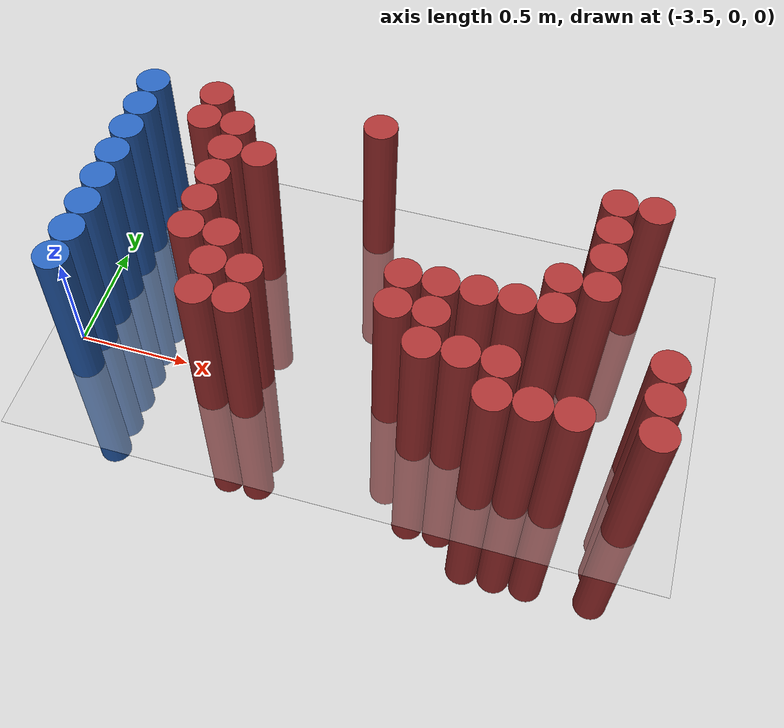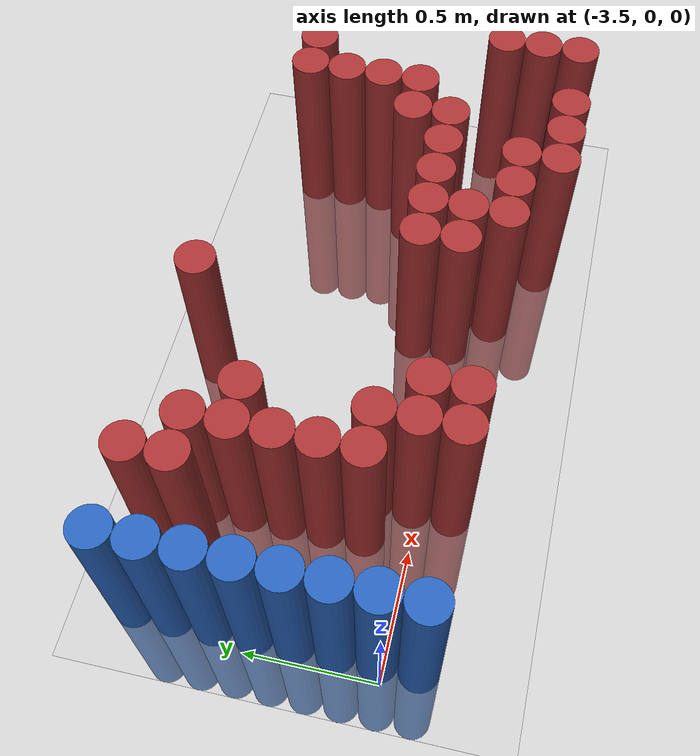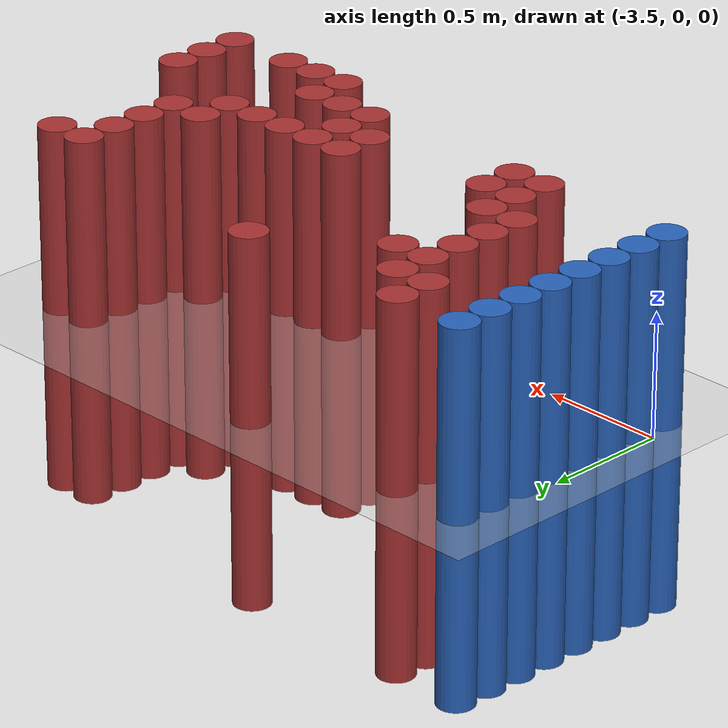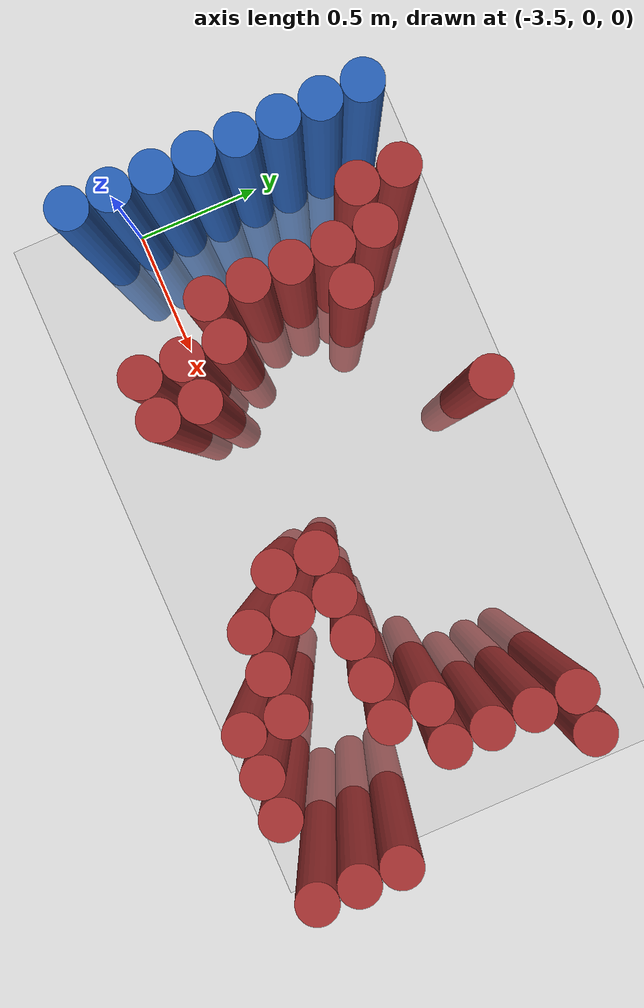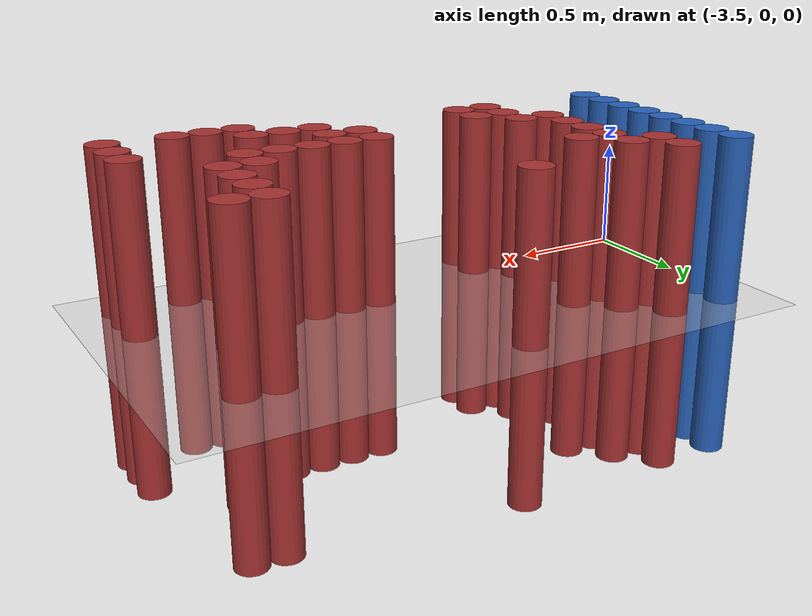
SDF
<sdf version="1.6">
 <world name="default">
  <model name="ground_plane">
   <static>1</static>
   <link name="link">
    <collision name="collision">
     <geometry><plane><normal>0 0 1</normal><size>100 100</size></plane></geometry>
     <surface><friction><ode><mu>100</mu><mu2>50</mu2></ode></friction></surface>
    </collision>
    <visual name="visual">
     <cast_shadows>0</cast_shadows>
     <geometry><plane><normal>0 0 1</normal><size>100 100</size></plane></geometry>
     <material>
      <script><uri>file://media/materials/scripts/gazebo.material</uri><name>Gazebo/Grey</name></script>
     </material>
    </visual>
   </link>
  </model>
  <model name="unit_cylinder_113">
   <static>1</static>
   <pose>-3.425000 -0.125000 0.000000 0.000000 0.000000 0.000000</pose>
   <link name="link">
    <inertial>
     <mass>1</mass>
     <inertia><ixx>0.145833</ixx><ixy>0</ixy><ixz>0</ixz><iyy>0.145833</iyy><iyz>0</iyz><izz>0.125</izz></inertia>
    </inertial>
    <collision name="collision">
     <geometry><cylinder><radius>0.075000</radius><length>1.5</length></cylinder></geometry>
    </collision>
    <visual name="visual">
     <geometry><cylinder><radius>0.075000</radius><length>1.5</length></cylinder></geometry>
     <material>
      <ambient>0.152000 0.379000 0.720000 1</ambient>
      <diffuse>0.152000 0.379000 0.720000 1</diffuse>
     </material>
     <material>
      <script><name>Gazebo/Grey</name><uri>file://media/materials/scripts/gazebo.material</uri></script>
     </material>
    </visual>
   </link>
  </model>
  <model name="unit_cylinder_115">
   <static>1</static>
   <pose>-3.425000 0.025000 0.000000 0.000000 0.000000 0.000000</pose>
   <link name="link">
    <inertial>
     <mass>1</mass>
     <inertia><ixx>0.145833</ixx><ixy>0</ixy><ixz>0</ixz><iyy>0.145833</iyy><iyz>0</iyz><izz>0.125</izz></inertia>
    </inertial>
    <collision name="collision">
     <geometry><cylinder><radius>0.075000</radius><length>1.5</length></cylinder></geometry>
    </collision>
    <visual name="visual">
     <geometry><cylinder><radius>0.075000</radius><length>1.5</length></cylinder></geometry>
     <material>
      <ambient>0.152000 0.379000 0.720000 1</ambient>
      <diffuse>0.152000 0.379000 0.720000 1</diffuse>
     </material>
     <material>
      <script><name>Gazebo/Grey</name><uri>file://media/materials/scripts/gazebo.material</uri></script>
     </material>
    </visual>
   </link>
  </model>
  <model name="unit_cylinder_117">
   <static>1</static>
   <pose>-3.425000 0.175000 0.000000 0.000000 0.000000 0.000000</pose>
   <link name="link">
    <inertial>
     <mass>1</mass>
     <inertia><ixx>0.145833</ixx><ixy>0</ixy><ixz>0</ixz><iyy>0.145833</iyy><iyz>0</iyz><izz>0.125</izz></inertia>
    </inertial>
    <collision name="collision">
     <geometry><cylinder><radius>0.075000</radius><length>1.5</length></cylinder></geometry>
    </collision>
    <visual name="visual">
     <geometry><cylinder><radius>0.075000</radius><length>1.5</length></cylinder></geometry>
     <material>
      <ambient>0.152000 0.379000 0.720000 1</ambient>
      <diffuse>0.152000 0.379000 0.720000 1</diffuse>
     </material>
     <material>
      <script><name>Gazebo/Grey</name><uri>file://media/materials/scripts/gazebo.material</uri></script>
     </material>
    </visual>
   </link>
  </model>
  <model name="unit_cylinder_119">
   <static>1</static>
   <pose>-3.425000 0.325000 0.000000 0.000000 0.000000 0.000000</pose>
   <link name="link">
    <inertial>
     <mass>1</mass>
     <inertia><ixx>0.145833</ixx><ixy>0</ixy><ixz>0</ixz><iyy>0.145833</iyy><iyz>0</iyz><izz>0.125</izz></inertia>
    </inertial>
    <collision name="collision">
     <geometry><cylinder><radius>0.075000</radius><length>1.5</length></cylinder></geometry>
    </collision>
    <visual name="visual">
     <geometry><cylinder><radius>0.075000</radius><length>1.5</length></cylinder></geometry>
     <material>
      <ambient>0.152000 0.379000 0.720000 1</ambient>
      <diffuse>0.152000 0.379000 0.720000 1</diffuse>
     </material>
     <material>
      <script><name>Gazebo/Grey</name><uri>file://media/materials/scripts/gazebo.material</uri></script>
     </material>
    </visual>
   </link>
  </model>
  <model name="unit_cylinder_121">
   <static>1</static>
   <pose>-3.425000 0.475000 0.000000 0.000000 0.000000 0.000000</pose>
   <link name="link">
    <inertial>
     <mass>1</mass>
     <inertia><ixx>0.145833</ixx><ixy>0</ixy><ixz>0</ixz><iyy>0.145833</iyy><iyz>0</iyz><izz>0.125</izz></inertia>
    </inertial>
    <collision name="collision">
     <geometry><cylinder><radius>0.075000</radius><length>1.5</length></cylinder></geometry>
    </collision>
    <visual name="visual">
     <geometry><cylinder><radius>0.075000</radius><length>1.5</length></cylinder></geometry>
     <material>
      <ambient>0.152000 0.379000 0.720000 1</ambient>
      <diffuse>0.152000 0.379000 0.720000 1</diffuse>
     </material>
     <material>
      <script><name>Gazebo/Grey</name><uri>file://media/materials/scripts/gazebo.material</uri></script>
     </material>
    </visual>
   </link>
  </model>
  <model name="unit_cylinder_123">
   <static>1</static>
   <pose>-3.425000 0.625000 0.000000 0.000000 0.000000 0.000000</pose>
   <link name="link">
    <inertial>
     <mass>1</mass>
     <inertia><ixx>0.145833</ixx><ixy>0</ixy><ixz>0</ixz><iyy>0.145833</iyy><iyz>0</iyz><izz>0.125</izz></inertia>
    </inertial>
    <collision name="collision">
     <geometry><cylinder><radius>0.075000</radius><length>1.5</length></cylinder></geometry>
    </collision>
    <visual name="visual">
     <geometry><cylinder><radius>0.075000</radius><length>1.5</length></cylinder></geometry>
     <material>
      <ambient>0.152000 0.379000 0.720000 1</ambient>
      <diffuse>0.152000 0.379000 0.720000 1</diffuse>
     </material>
     <material>
      <script><name>Gazebo/Grey</name><uri>file://media/materials/scripts/gazebo.material</uri></script>
     </material>
    </visual>
   </link>
  </model>
  <model name="unit_cylinder_125">
   <static>1</static>
   <pose>-3.425000 0.775000 0.000000 0.000000 0.000000 0.000000</pose>
   <link name="link">
    <inertial>
     <mass>1</mass>
     <inertia><ixx>0.145833</ixx><ixy>0</ixy><ixz>0</ixz><iyy>0.145833</iyy><iyz>0</iyz><izz>0.125</izz></inertia>
    </inertial>
    <collision name="collision">
     <geometry><cylinder><radius>0.075000</radius><length>1.5</length></cylinder></geometry>
    </collision>
    <visual name="visual">
     <geometry><cylinder><radius>0.075000</radius><length>1.5</length></cylinder></geometry>
     <material>
      <ambient>0.152000 0.379000 0.720000 1</ambient>
      <diffuse>0.152000 0.379000 0.720000 1</diffuse>
     </material>
     <material>
      <script><name>Gazebo/Grey</name><uri>file://media/materials/scripts/gazebo.material</uri></script>
     </material>
    </visual>
   </link>
  </model>
  <model name="unit_cylinder_127">
   <static>1</static>
   <pose>-3.425000 0.925000 0.000000 0.000000 0.000000 0.000000</pose>
   <link name="link">
    <inertial>
     <mass>1</mass>
     <inertia><ixx>0.145833</ixx><ixy>0</ixy><ixz>0</ixz><iyy>0.145833</iyy><iyz>0</iyz><izz>0.125</izz></inertia>
    </inertial>
    <collision name="collision">
     <geometry><cylinder><radius>0.075000</radius><length>1.5</length></cylinder></geometry>
    </collision>
    <visual name="visual">
     <geometry><cylinder><radius>0.075000</radius><length>1.5</length></cylinder></geometry>
     <material>
      <ambient>0.152000 0.379000 0.720000 1</ambient>
      <diffuse>0.152000 0.379000 0.720000 1</diffuse>
     </material>
     <material>
      <script><name>Gazebo/Grey</name><uri>file://media/materials/scripts/gazebo.material</uri></script>
     </material>
    </visual>
   </link>
  </model>
  <model name="unit_cylinder_220">
   <static>1</static>
   <pose>-3.425000 -0.125000 0.000000 0.000000 0.000000 0.000000</pose>
   <link name="link">
    <inertial>
     <mass>1</mass>
     <inertia><ixx>0.145833</ixx><ixy>0</ixy><ixz>0</ixz><iyy>0.145833</iyy><iyz>0</iyz><izz>0.125</izz></inertia>
    </inertial>
    <collision name="collision">
     <geometry><cylinder><radius>0.075000</radius><length>1.5</length></cylinder></geometry>
    </collision>
    <visual name="visual">
     <geometry><cylinder><radius>0.075000</radius><length>1.5</length></cylinder></geometry>
     <material>
      <ambient>0.152000 0.379000 0.720000 1</ambient>
      <diffuse>0.152000 0.379000 0.720000 1</diffuse>
     </material>
     <material>
      <script><name>Gazebo/Grey</name><uri>file://media/materials/scripts/gazebo.material</uri></script>
     </material>
    </visual>
   </link>
  </model>
  <model name="unit_cylinder_221">
   <static>1</static>
   <pose>-3.425000 0.025000 0.000000 0.000000 0.000000 0.000000</pose>
   <link name="link">
    <inertial>
     <mass>1</mass>
     <inertia><ixx>0.145833</ixx><ixy>0</ixy><ixz>0</ixz><iyy>0.145833</iyy><iyz>0</iyz><izz>0.125</izz></inertia>
    </inertial>
    <collision name="collision">
     <geometry><cylinder><radius>0.075000</radius><length>1.5</length></cylinder></geometry>
    </collision>
    <visual name="visual">
     <geometry><cylinder><radius>0.075000</radius><length>1.5</length></cylinder></geometry>
     <material>
      <ambient>0.152000 0.379000 0.720000 1</ambient>
      <diffuse>0.152000 0.379000 0.720000 1</diffuse>
     </material>
     <material>
      <script><name>Gazebo/Grey</name><uri>file://media/materials/scripts/gazebo.material</uri></script>
     </material>
    </visual>
   </link>
  </model>
  <model name="unit_cylinder_222">
   <static>1</static>
   <pose>-3.425000 0.175000 0.000000 0.000000 0.000000 0.000000</pose>
   <link name="link">
    <inertial>
     <mass>1</mass>
     <inertia><ixx>0.145833</ixx><ixy>0</ixy><ixz>0</ixz><iyy>0.145833</iyy><iyz>0</iyz><izz>0.125</izz></inertia>
    </inertial>
    <collision name="collision">
     <geometry><cylinder><radius>0.075000</radius><length>1.5</length></cylinder></geometry>
    </collision>
    <visual name="visual">
     <geometry><cylinder><radius>0.075000</radius><length>1.5</length></cylinder></geometry>
     <material>
      <ambient>0.152000 0.379000 0.720000 1</ambient>
      <diffuse>0.152000 0.379000 0.720000 1</diffuse>
     </material>
     <material>
      <script><name>Gazebo/Grey</name><uri>file://media/materials/scripts/gazebo.material</uri></script>
     </material>
    </visual>
   </link>
  </model>
  <model name="unit_cylinder_223">
   <static>1</static>
   <pose>-3.425000 0.325000 0.000000 0.000000 0.000000 0.000000</pose>
   <link name="link">
    <inertial>
     <mass>1</mass>
     <inertia><ixx>0.145833</ixx><ixy>0</ixy><ixz>0</ixz><iyy>0.145833</iyy><iyz>0</iyz><izz>0.125</izz></inertia>
    </inertial>
    <collision name="collision">
     <geometry><cylinder><radius>0.075000</radius><length>1.5</length></cylinder></geometry>
    </collision>
    <visual name="visual">
     <geometry><cylinder><radius>0.075000</radius><length>1.5</length></cylinder></geometry>
     <material>
      <ambient>0.152000 0.379000 0.720000 1</ambient>
      <diffuse>0.152000 0.379000 0.720000 1</diffuse>
     </material>
     <material>
      <script><name>Gazebo/Grey</name><uri>file://media/materials/scripts/gazebo.material</uri></script>
     </material>
    </visual>
   </link>
  </model>
  <model name="unit_cylinder_224">
   <static>1</static>
   <pose>-3.425000 0.475000 0.000000 0.000000 0.000000 0.000000</pose>
   <link name="link">
    <inertial>
     <mass>1</mass>
     <inertia><ixx>0.145833</ixx><ixy>0</ixy><ixz>0</ixz><iyy>0.145833</iyy><iyz>0</iyz><izz>0.125</izz></inertia>
    </inertial>
    <collision name="collision">
     <geometry><cylinder><radius>0.075000</radius><length>1.5</length></cylinder></geometry>
    </collision>
    <visual name="visual">
     <geometry><cylinder><radius>0.075000</radius><length>1.5</length></cylinder></geometry>
     <material>
      <ambient>0.152000 0.379000 0.720000 1</ambient>
      <diffuse>0.152000 0.379000 0.720000 1</diffuse>
     </material>
     <material>
      <script><name>Gazebo/Grey</name><uri>file://media/materials/scripts/gazebo.material</uri></script>
     </material>
    </visual>
   </link>
  </model>
  <model name="unit_cylinder_225">
   <static>1</static>
   <pose>-3.425000 0.625000 0.000000 0.000000 0.000000 0.000000</pose>
   <link name="link">
    <inertial>
     <mass>1</mass>
     <inertia><ixx>0.145833</ixx><ixy>0</ixy><ixz>0</ixz><iyy>0.145833</iyy><iyz>0</iyz><izz>0.125</izz></inertia>
    </inertial>
    <collision name="collision">
     <geometry><cylinder><radius>0.075000</radius><length>1.5</length></cylinder></geometry>
    </collision>
    <visual name="visual">
     <geometry><cylinder><radius>0.075000</radius><length>1.5</length></cylinder></geometry>
     <material>
      <ambient>0.152000 0.379000 0.720000 1</ambient>
      <diffuse>0.152000 0.379000 0.720000 1</diffuse>
     </material>
     <material>
      <script><name>Gazebo/Grey</name><uri>file://media/materials/scripts/gazebo.material</uri></script>
     </material>
    </visual>
   </link>
  </model>
  <model name="unit_cylinder_226">
   <static>1</static>
   <pose>-3.425000 0.775000 0.000000 0.000000 0.000000 0.000000</pose>
   <link name="link">
    <inertial>
     <mass>1</mass>
     <inertia><ixx>0.145833</ixx><ixy>0</ixy><ixz>0</ixz><iyy>0.145833</iyy><iyz>0</iyz><izz>0.125</izz></inertia>
    </inertial>
    <collision name="collision">
     <geometry><cylinder><radius>0.075000</radius><length>1.5</length></cylinder></geometry>
    </collision>
    <visual name="visual">
     <geometry><cylinder><radius>0.075000</radius><length>1.5</length></cylinder></geometry>
     <material>
      <ambient>0.152000 0.379000 0.720000 1</ambient>
      <diffuse>0.152000 0.379000 0.720000 1</diffuse>
     </material>
     <material>
      <script><name>Gazebo/Grey</name><uri>file://media/materials/scripts/gazebo.material</uri></script>
     </material>
    </visual>
   </link>
  </model>
  <model name="unit_cylinder_227">
   <static>1</static>
   <pose>-3.425000 0.925000 0.000000 0.000000 0.000000 0.000000</pose>
   <link name="link">
    <inertial>
     <mass>1</mass>
     <inertia><ixx>0.145833</ixx><ixy>0</ixy><ixz>0</ixz><iyy>0.145833</iyy><iyz>0</iyz><izz>0.125</izz></inertia>
    </inertial>
    <collision name="collision">
     <geometry><cylinder><radius>0.075000</radius><length>1.5</length></cylinder></geometry>
    </collision>
    <visual name="visual">
     <geometry><cylinder><radius>0.075000</radius><length>1.5</length></cylinder></geometry>
     <material>
      <ambient>0.152000 0.379000 0.720000 1</ambient>
      <diffuse>0.152000 0.379000 0.720000 1</diffuse>
     </material>
     <material>
      <script><name>Gazebo/Grey</name><uri>file://media/materials/scripts/gazebo.material</uri></script>
     </material>
    </visual>
   </link>
  </model>
  <model name="unit_cylinder_284">
   <static>1</static>
   <pose>-3.125000 0.775000 0.000000 0.000000 0.000000 0.000000</pose>
   <link name="link">
    <inertial>
     <mass>1</mass>
     <inertia><ixx>0.145833</ixx><ixy>0</ixy><ixz>0</ixz><iyy>0.145833</iyy><iyz>0</iyz><izz>0.125</izz></inertia>
    </inertial>
    <collision name="collision">
     <geometry><cylinder><radius>0.075000</radius><length>1.5</length></cylinder></geometry>
    </collision>
    <visual name="visual">
     <geometry><cylinder><radius>0.075000</radius><length>1.5</length></cylinder></geometry>
     <material>
      <ambient>0.648000 0.192000 0.192000 1</ambient>
      <diffuse>0.648000 0.192000 0.192000 1</diffuse>
     </material>
     <material>
      <script><name>Gazebo/Grey</name><uri>file://media/materials/scripts/gazebo.material</uri></script>
     </material>
    </visual>
   </link>
  </model>
  <model name="unit_cylinder_285">
   <static>1</static>
   <pose>-3.125000 0.925000 0.000000 0.000000 0.000000 0.000000</pose>
   <link name="link">
    <inertial>
     <mass>1</mass>
     <inertia><ixx>0.145833</ixx><ixy>0</ixy><ixz>0</ixz><iyy>0.145833</iyy><iyz>0</iyz><izz>0.125</izz></inertia>
    </inertial>
    <collision name="collision">
     <geometry><cylinder><radius>0.075000</radius><length>1.5</length></cylinder></geometry>
    </collision>
    <visual name="visual">
     <geometry><cylinder><radius>0.075000</radius><length>1.5</length></cylinder></geometry>
     <material>
      <ambient>0.648000 0.192000 0.192000 1</ambient>
      <diffuse>0.648000 0.192000 0.192000 1</diffuse>
     </material>
     <material>
      <script><name>Gazebo/Grey</name><uri>file://media/materials/scripts/gazebo.material</uri></script>
     </material>
    </visual>
   </link>
  </model>
  <model name="unit_cylinder_295">
   <static>1</static>
   <pose>-2.975000 0.175000 0.000000 0.000000 0.000000 0.000000</pose>
   <link name="link">
    <inertial>
     <mass>1</mass>
     <inertia><ixx>0.145833</ixx><ixy>0</ixy><ixz>0</ixz><iyy>0.145833</iyy><iyz>0</iyz><izz>0.125</izz></inertia>
    </inertial>
    <collision name="collision">
     <geometry><cylinder><radius>0.075000</radius><length>1.5</length></cylinder></geometry>
    </collision>
    <visual name="visual">
     <geometry><cylinder><radius>0.075000</radius><length>1.5</length></cylinder></geometry>
     <material>
      <ambient>0.648000 0.192000 0.192000 1</ambient>
      <diffuse>0.648000 0.192000 0.192000 1</diffuse>
     </material>
     <material>
      <script><name>Gazebo/Grey</name><uri>file://media/materials/scripts/gazebo.material</uri></script>
     </material>
    </visual>
   </link>
  </model>
  <model name="unit_cylinder_296">
   <static>1</static>
   <pose>-2.975000 0.325000 0.000000 0.000000 0.000000 0.000000</pose>
   <link name="link">
    <inertial>
     <mass>1</mass>
     <inertia><ixx>0.145833</ixx><ixy>0</ixy><ixz>0</ixz><iyy>0.145833</iyy><iyz>0</iyz><izz>0.125</izz></inertia>
    </inertial>
    <collision name="collision">
     <geometry><cylinder><radius>0.075000</radius><length>1.5</length></cylinder></geometry>
    </collision>
    <visual name="visual">
     <geometry><cylinder><radius>0.075000</radius><length>1.5</length></cylinder></geometry>
     <material>
      <ambient>0.648000 0.192000 0.192000 1</ambient>
      <diffuse>0.648000 0.192000 0.192000 1</diffuse>
     </material>
     <material>
      <script><name>Gazebo/Grey</name><uri>file://media/materials/scripts/gazebo.material</uri></script>
     </material>
    </visual>
   </link>
  </model>
  <model name="unit_cylinder_297">
   <static>1</static>
   <pose>-2.975000 0.475000 0.000000 0.000000 0.000000 0.000000</pose>
   <link name="link">
    <inertial>
     <mass>1</mass>
     <inertia><ixx>0.145833</ixx><ixy>0</ixy><ixz>0</ixz><iyy>0.145833</iyy><iyz>0</iyz><izz>0.125</izz></inertia>
    </inertial>
    <collision name="collision">
     <geometry><cylinder><radius>0.075000</radius><length>1.5</length></cylinder></geometry>
    </collision>
    <visual name="visual">
     <geometry><cylinder><radius>0.075000</radius><length>1.5</length></cylinder></geometry>
     <material>
      <ambient>0.648000 0.192000 0.192000 1</ambient>
      <diffuse>0.648000 0.192000 0.192000 1</diffuse>
     </material>
     <material>
      <script><name>Gazebo/Grey</name><uri>file://media/materials/scripts/gazebo.material</uri></script>
     </material>
    </visual>
   </link>
  </model>
  <model name="unit_cylinder_298">
   <static>1</static>
   <pose>-2.975000 0.625000 0.000000 0.000000 0.000000 0.000000</pose>
   <link name="link">
    <inertial>
     <mass>1</mass>
     <inertia><ixx>0.145833</ixx><ixy>0</ixy><ixz>0</ixz><iyy>0.145833</iyy><iyz>0</iyz><izz>0.125</izz></inertia>
    </inertial>
    <collision name="collision">
     <geometry><cylinder><radius>0.075000</radius><length>1.5</length></cylinder></geometry>
    </collision>
    <visual name="visual">
     <geometry><cylinder><radius>0.075000</radius><length>1.5</length></cylinder></geometry>
     <material>
      <ambient>0.648000 0.192000 0.192000 1</ambient>
      <diffuse>0.648000 0.192000 0.192000 1</diffuse>
     </material>
     <material>
      <script><name>Gazebo/Grey</name><uri>file://media/materials/scripts/gazebo.material</uri></script>
     </material>
    </visual>
   </link>
  </model>
  <model name="unit_cylinder_299">
   <static>1</static>
   <pose>-2.975000 0.775000 0.000000 0.000000 0.000000 0.000000</pose>
   <link name="link">
    <inertial>
     <mass>1</mass>
     <inertia><ixx>0.145833</ixx><ixy>0</ixy><ixz>0</ixz><iyy>0.145833</iyy><iyz>0</iyz><izz>0.125</izz></inertia>
    </inertial>
    <collision name="collision">
     <geometry><cylinder><radius>0.075000</radius><length>1.5</length></cylinder></geometry>
    </collision>
    <visual name="visual">
     <geometry><cylinder><radius>0.075000</radius><length>1.5</length></cylinder></geometry>
     <material>
      <ambient>0.648000 0.192000 0.192000 1</ambient>
      <diffuse>0.648000 0.192000 0.192000 1</diffuse>
     </material>
     <material>
      <script><name>Gazebo/Grey</name><uri>file://media/materials/scripts/gazebo.material</uri></script>
     </material>
    </visual>
   </link>
  </model>
  <model name="unit_cylinder_305">
   <static>1</static>
   <pose>-2.825000 -0.125000 0.000000 0.000000 0.000000 0.000000</pose>
   <link name="link">
    <inertial>
     <mass>1</mass>
     <inertia><ixx>0.145833</ixx><ixy>0</ixy><ixz>0</ixz><iyy>0.145833</iyy><iyz>0</iyz><izz>0.125</izz></inertia>
    </inertial>
    <collision name="collision">
     <geometry><cylinder><radius>0.075000</radius><length>1.5</length></cylinder></geometry>
    </collision>
    <visual name="visual">
     <geometry><cylinder><radius>0.075000</radius><length>1.5</length></cylinder></geometry>
     <material>
      <ambient>0.648000 0.192000 0.192000 1</ambient>
      <diffuse>0.648000 0.192000 0.192000 1</diffuse>
     </material>
     <material>
      <script><name>Gazebo/Grey</name><uri>file://media/materials/scripts/gazebo.material</uri></script>
     </material>
    </visual>
   </link>
  </model>
  <model name="unit_cylinder_306">
   <static>1</static>
   <pose>-2.825000 0.025000 0.000000 0.000000 0.000000 0.000000</pose>
   <link name="link">
    <inertial>
     <mass>1</mass>
     <inertia><ixx>0.145833</ixx><ixy>0</ixy><ixz>0</ixz><iyy>0.145833</iyy><iyz>0</iyz><izz>0.125</izz></inertia>
    </inertial>
    <collision name="collision">
     <geometry><cylinder><radius>0.075000</radius><length>1.5</length></cylinder></geometry>
    </collision>
    <visual name="visual">
     <geometry><cylinder><radius>0.075000</radius><length>1.5</length></cylinder></geometry>
     <material>
      <ambient>0.648000 0.192000 0.192000 1</ambient>
      <diffuse>0.648000 0.192000 0.192000 1</diffuse>
     </material>
     <material>
      <script><name>Gazebo/Grey</name><uri>file://media/materials/scripts/gazebo.material</uri></script>
     </material>
    </visual>
   </link>
  </model>
  <model name="unit_cylinder_307">
   <static>1</static>
   <pose>-2.825000 0.175000 0.000000 0.000000 0.000000 0.000000</pose>
   <link name="link">
    <inertial>
     <mass>1</mass>
     <inertia><ixx>0.145833</ixx><ixy>0</ixy><ixz>0</ixz><iyy>0.145833</iyy><iyz>0</iyz><izz>0.125</izz></inertia>
    </inertial>
    <collision name="collision">
     <geometry><cylinder><radius>0.075000</radius><length>1.5</length></cylinder></geometry>
    </collision>
    <visual name="visual">
     <geometry><cylinder><radius>0.075000</radius><length>1.5</length></cylinder></geometry>
     <material>
      <ambient>0.648000 0.192000 0.192000 1</ambient>
      <diffuse>0.648000 0.192000 0.192000 1</diffuse>
     </material>
     <material>
      <script><name>Gazebo/Grey</name><uri>file://media/materials/scripts/gazebo.material</uri></script>
     </material>
    </visual>
   </link>
  </model>
  <model name="unit_cylinder_308">
   <static>1</static>
   <pose>-2.825000 0.625000 0.000000 0.000000 0.000000 0.000000</pose>
   <link name="link">
    <inertial>
     <mass>1</mass>
     <inertia><ixx>0.145833</ixx><ixy>0</ixy><ixz>0</ixz><iyy>0.145833</iyy><iyz>0</iyz><izz>0.125</izz></inertia>
    </inertial>
    <collision name="collision">
     <geometry><cylinder><radius>0.075000</radius><length>1.5</length></cylinder></geometry>
    </collision>
    <visual name="visual">
     <geometry><cylinder><radius>0.075000</radius><length>1.5</length></cylinder></geometry>
     <material>
      <ambient>0.648000 0.192000 0.192000 1</ambient>
      <diffuse>0.648000 0.192000 0.192000 1</diffuse>
     </material>
     <material>
      <script><name>Gazebo/Grey</name><uri>file://media/materials/scripts/gazebo.material</uri></script>
     </material>
    </visual>
   </link>
  </model>
  <model name="unit_cylinder_309">
   <static>1</static>
   <pose>-2.675000 -0.125000 0.000000 0.000000 0.000000 0.000000</pose>
   <link name="link">
    <inertial>
     <mass>1</mass>
     <inertia><ixx>0.145833</ixx><ixy>0</ixy><ixz>0</ixz><iyy>0.145833</iyy><iyz>0</iyz><izz>0.125</izz></inertia>
    </inertial>
    <collision name="collision">
     <geometry><cylinder><radius>0.075000</radius><length>1.5</length></cylinder></geometry>
    </collision>
    <visual name="visual">
     <geometry><cylinder><radius>0.075000</radius><length>1.5</length></cylinder></geometry>
     <material>
      <ambient>0.648000 0.192000 0.192000 1</ambient>
      <diffuse>0.648000 0.192000 0.192000 1</diffuse>
     </material>
     <material>
      <script><name>Gazebo/Grey</name><uri>file://media/materials/scripts/gazebo.material</uri></script>
     </material>
    </visual>
   </link>
  </model>
  <model name="unit_cylinder_310">
   <static>1</static>
   <pose>-2.675000 0.025000 0.000000 0.000000 0.000000 0.000000</pose>
   <link name="link">
    <inertial>
     <mass>1</mass>
     <inertia><ixx>0.145833</ixx><ixy>0</ixy><ixz>0</ixz><iyy>0.145833</iyy><iyz>0</iyz><izz>0.125</izz></inertia>
    </inertial>
    <collision name="collision">
     <geometry><cylinder><radius>0.075000</radius><length>1.5</length></cylinder></geometry>
    </collision>
    <visual name="visual">
     <geometry><cylinder><radius>0.075000</radius><length>1.5</length></cylinder></geometry>
     <material>
      <ambient>0.648000 0.192000 0.192000 1</ambient>
      <diffuse>0.648000 0.192000 0.192000 1</diffuse>
     </material>
     <material>
      <script><name>Gazebo/Grey</name><uri>file://media/materials/scripts/gazebo.material</uri></script>
     </material>
    </visual>
   </link>
  </model>
  <model name="unit_cylinder_312">
   <static>1</static>
   <pose>-2.375000 0.925000 0.000000 0.000000 0.000000 0.000000</pose>
   <link name="link">
    <inertial>
     <mass>1</mass>
     <inertia><ixx>0.145833</ixx><ixy>0</ixy><ixz>0</ixz><iyy>0.145833</iyy><iyz>0</iyz><izz>0.125</izz></inertia>
    </inertial>
    <collision name="collision">
     <geometry><cylinder><radius>0.075000</radius><length>1.5</length></cylinder></geometry>
    </collision>
    <visual name="visual">
     <geometry><cylinder><radius>0.075000</radius><length>1.5</length></cylinder></geometry>
     <material>
      <ambient>0.648000 0.192000 0.192000 1</ambient>
      <diffuse>0.648000 0.192000 0.192000 1</diffuse>
     </material>
     <material>
      <script><name>Gazebo/Grey</name><uri>file://media/materials/scripts/gazebo.material</uri></script>
     </material>
    </visual>
   </link>
  </model>
  <model name="unit_cylinder_333">
   <static>1</static>
   <pose>-2.075000 0.025000 0.000000 0.000000 0.000000 0.000000</pose>
   <link name="link">
    <inertial>
     <mass>1</mass>
     <inertia><ixx>0.145833</ixx><ixy>0</ixy><ixz>0</ixz><iyy>0.145833</iyy><iyz>0</iyz><izz>0.125</izz></inertia>
    </inertial>
    <collision name="collision">
     <geometry><cylinder><radius>0.075000</radius><length>1.5</length></cylinder></geometry>
    </collision>
    <visual name="visual">
     <geometry><cylinder><radius>0.075000</radius><length>1.5</length></cylinder></geometry>
     <material>
      <ambient>0.648000 0.192000 0.192000 1</ambient>
      <diffuse>0.648000 0.192000 0.192000 1</diffuse>
     </material>
     <material>
      <script><name>Gazebo/Grey</name><uri>file://media/materials/scripts/gazebo.material</uri></script>
     </material>
    </visual>
   </link>
  </model>
  <model name="unit_cylinder_334">
   <static>1</static>
   <pose>-2.075000 0.175000 0.000000 0.000000 0.000000 0.000000</pose>
   <link name="link">
    <inertial>
     <mass>1</mass>
     <inertia><ixx>0.145833</ixx><ixy>0</ixy><ixz>0</ixz><iyy>0.145833</iyy><iyz>0</iyz><izz>0.125</izz></inertia>
    </inertial>
    <collision name="collision">
     <geometry><cylinder><radius>0.075000</radius><length>1.5</length></cylinder></geometry>
    </collision>
    <visual name="visual">
     <geometry><cylinder><radius>0.075000</radius><length>1.5</length></cylinder></geometry>
     <material>
      <ambient>0.648000 0.192000 0.192000 1</ambient>
      <diffuse>0.648000 0.192000 0.192000 1</diffuse>
     </material>
     <material>
      <script><name>Gazebo/Grey</name><uri>file://media/materials/scripts/gazebo.material</uri></script>
     </material>
    </visual>
   </link>
  </model>
  <model name="unit_cylinder_348">
   <static>1</static>
   <pose>-1.925000 -0.125000 0.000000 0.000000 0.000000 0.000000</pose>
   <link name="link">
    <inertial>
     <mass>1</mass>
     <inertia><ixx>0.145833</ixx><ixy>0</ixy><ixz>0</ixz><iyy>0.145833</iyy><iyz>0</iyz><izz>0.125</izz></inertia>
    </inertial>
    <collision name="collision">
     <geometry><cylinder><radius>0.075000</radius><length>1.5</length></cylinder></geometry>
    </collision>
    <visual name="visual">
     <geometry><cylinder><radius>0.075000</radius><length>1.5</length></cylinder></geometry>
     <material>
      <ambient>0.648000 0.192000 0.192000 1</ambient>
      <diffuse>0.648000 0.192000 0.192000 1</diffuse>
     </material>
     <material>
      <script><name>Gazebo/Grey</name><uri>file://media/materials/scripts/gazebo.material</uri></script>
     </material>
    </visual>
   </link>
  </model>
  <model name="unit_cylinder_349">
   <static>1</static>
   <pose>-1.925000 0.025000 0.000000 0.000000 0.000000 0.000000</pose>
   <link name="link">
    <inertial>
     <mass>1</mass>
     <inertia><ixx>0.145833</ixx><ixy>0</ixy><ixz>0</ixz><iyy>0.145833</iyy><iyz>0</iyz><izz>0.125</izz></inertia>
    </inertial>
    <collision name="collision">
     <geometry><cylinder><radius>0.075000</radius><length>1.5</length></cylinder></geometry>
    </collision>
    <visual name="visual">
     <geometry><cylinder><radius>0.075000</radius><length>1.5</length></cylinder></geometry>
     <material>
      <ambient>0.648000 0.192000 0.192000 1</ambient>
      <diffuse>0.648000 0.192000 0.192000 1</diffuse>
     </material>
     <material>
      <script><name>Gazebo/Grey</name><uri>file://media/materials/scripts/gazebo.material</uri></script>
     </material>
    </visual>
   </link>
  </model>
  <model name="unit_cylinder_350">
   <static>1</static>
   <pose>-1.925000 0.175000 0.000000 0.000000 0.000000 0.000000</pose>
   <link name="link">
    <inertial>
     <mass>1</mass>
     <inertia><ixx>0.145833</ixx><ixy>0</ixy><ixz>0</ixz><iyy>0.145833</iyy><iyz>0</iyz><izz>0.125</izz></inertia>
    </inertial>
    <collision name="collision">
     <geometry><cylinder><radius>0.075000</radius><length>1.5</length></cylinder></geometry>
    </collision>
    <visual name="visual">
     <geometry><cylinder><radius>0.075000</radius><length>1.5</length></cylinder></geometry>
     <material>
      <ambient>0.648000 0.192000 0.192000 1</ambient>
      <diffuse>0.648000 0.192000 0.192000 1</diffuse>
     </material>
     <material>
      <script><name>Gazebo/Grey</name><uri>file://media/materials/scripts/gazebo.material</uri></script>
     </material>
    </visual>
   </link>
  </model>
  <model name="unit_cylinder_359">
   <static>1</static>
   <pose>-1.775000 -0.125000 0.000000 0.000000 0.000000 0.000000</pose>
   <link name="link">
    <inertial>
     <mass>1</mass>
     <inertia><ixx>0.145833</ixx><ixy>0</ixy><ixz>0</ixz><iyy>0.145833</iyy><iyz>0</iyz><izz>0.125</izz></inertia>
    </inertial>
    <collision name="collision">
     <geometry><cylinder><radius>0.075000</radius><length>1.5</length></cylinder></geometry>
    </collision>
    <visual name="visual">
     <geometry><cylinder><radius>0.075000</radius><length>1.5</length></cylinder></geometry>
     <material>
      <ambient>0.648000 0.192000 0.192000 1</ambient>
      <diffuse>0.648000 0.192000 0.192000 1</diffuse>
     </material>
     <material>
      <script><name>Gazebo/Grey</name><uri>file://media/materials/scripts/gazebo.material</uri></script>
     </material>
    </visual>
   </link>
  </model>
  <model name="unit_cylinder_360">
   <static>1</static>
   <pose>-1.775000 0.175000 0.000000 0.000000 0.000000 0.000000</pose>
   <link name="link">
    <inertial>
     <mass>1</mass>
     <inertia><ixx>0.145833</ixx><ixy>0</ixy><ixz>0</ixz><iyy>0.145833</iyy><iyz>0</iyz><izz>0.125</izz></inertia>
    </inertial>
    <collision name="collision">
     <geometry><cylinder><radius>0.075000</radius><length>1.5</length></cylinder></geometry>
    </collision>
    <visual name="visual">
     <geometry><cylinder><radius>0.075000</radius><length>1.5</length></cylinder></geometry>
     <material>
      <ambient>0.648000 0.192000 0.192000 1</ambient>
      <diffuse>0.648000 0.192000 0.192000 1</diffuse>
     </material>
     <material>
      <script><name>Gazebo/Grey</name><uri>file://media/materials/scripts/gazebo.material</uri></script>
     </material>
    </visual>
   </link>
  </model>
  <model name="unit_cylinder_369">
   <static>1</static>
   <pose>-1.625000 -0.275000 0.000000 0.000000 0.000000 0.000000</pose>
   <link name="link">
    <inertial>
     <mass>1</mass>
     <inertia><ixx>0.145833</ixx><ixy>0</ixy><ixz>0</ixz><iyy>0.145833</iyy><iyz>0</iyz><izz>0.125</izz></inertia>
    </inertial>
    <collision name="collision">
     <geometry><cylinder><radius>0.075000</radius><length>1.5</length></cylinder></geometry>
    </collision>
    <visual name="visual">
     <geometry><cylinder><radius>0.075000</radius><length>1.5</length></cylinder></geometry>
     <material>
      <ambient>0.648000 0.192000 0.192000 1</ambient>
      <diffuse>0.648000 0.192000 0.192000 1</diffuse>
     </material>
     <material>
      <script><name>Gazebo/Grey</name><uri>file://media/materials/scripts/gazebo.material</uri></script>
     </material>
    </visual>
   </link>
  </model>
  <model name="unit_cylinder_370">
   <static>1</static>
   <pose>-1.625000 -0.125000 0.000000 0.000000 0.000000 0.000000</pose>
   <link name="link">
    <inertial>
     <mass>1</mass>
     <inertia><ixx>0.145833</ixx><ixy>0</ixy><ixz>0</ixz><iyy>0.145833</iyy><iyz>0</iyz><izz>0.125</izz></inertia>
    </inertial>
    <collision name="collision">
     <geometry><cylinder><radius>0.075000</radius><length>1.5</length></cylinder></geometry>
    </collision>
    <visual name="visual">
     <geometry><cylinder><radius>0.075000</radius><length>1.5</length></cylinder></geometry>
     <material>
      <ambient>0.648000 0.192000 0.192000 1</ambient>
      <diffuse>0.648000 0.192000 0.192000 1</diffuse>
     </material>
     <material>
      <script><name>Gazebo/Grey</name><uri>file://media/materials/scripts/gazebo.material</uri></script>
     </material>
    </visual>
   </link>
  </model>
  <model name="unit_cylinder_371">
   <static>1</static>
   <pose>-1.625000 0.175000 0.000000 0.000000 0.000000 0.000000</pose>
   <link name="link">
    <inertial>
     <mass>1</mass>
     <inertia><ixx>0.145833</ixx><ixy>0</ixy><ixz>0</ixz><iyy>0.145833</iyy><iyz>0</iyz><izz>0.125</izz></inertia>
    </inertial>
    <collision name="collision">
     <geometry><cylinder><radius>0.075000</radius><length>1.5</length></cylinder></geometry>
    </collision>
    <visual name="visual">
     <geometry><cylinder><radius>0.075000</radius><length>1.5</length></cylinder></geometry>
     <material>
      <ambient>0.648000 0.192000 0.192000 1</ambient>
      <diffuse>0.648000 0.192000 0.192000 1</diffuse>
     </material>
     <material>
      <script><name>Gazebo/Grey</name><uri>file://media/materials/scripts/gazebo.material</uri></script>
     </material>
    </visual>
   </link>
  </model>
  <model name="unit_cylinder_379">
   <static>1</static>
   <pose>-1.475000 -0.275000 0.000000 0.000000 0.000000 0.000000</pose>
   <link name="link">
    <inertial>
     <mass>1</mass>
     <inertia><ixx>0.145833</ixx><ixy>0</ixy><ixz>0</ixz><iyy>0.145833</iyy><iyz>0</iyz><izz>0.125</izz></inertia>
    </inertial>
    <collision name="collision">
     <geometry><cylinder><radius>0.075000</radius><length>1.5</length></cylinder></geometry>
    </collision>
    <visual name="visual">
     <geometry><cylinder><radius>0.075000</radius><length>1.5</length></cylinder></geometry>
     <material>
      <ambient>0.648000 0.192000 0.192000 1</ambient>
      <diffuse>0.648000 0.192000 0.192000 1</diffuse>
     </material>
     <material>
      <script><name>Gazebo/Grey</name><uri>file://media/materials/scripts/gazebo.material</uri></script>
     </material>
    </visual>
   </link>
  </model>
  <model name="unit_cylinder_380">
   <static>1</static>
   <pose>-1.475000 0.175000 0.000000 0.000000 0.000000 0.000000</pose>
   <link name="link">
    <inertial>
     <mass>1</mass>
     <inertia><ixx>0.145833</ixx><ixy>0</ixy><ixz>0</ixz><iyy>0.145833</iyy><iyz>0</iyz><izz>0.125</izz></inertia>
    </inertial>
    <collision name="collision">
     <geometry><cylinder><radius>0.075000</radius><length>1.5</length></cylinder></geometry>
    </collision>
    <visual name="visual">
     <geometry><cylinder><radius>0.075000</radius><length>1.5</length></cylinder></geometry>
     <material>
      <ambient>0.648000 0.192000 0.192000 1</ambient>
      <diffuse>0.648000 0.192000 0.192000 1</diffuse>
     </material>
     <material>
      <script><name>Gazebo/Grey</name><uri>file://media/materials/scripts/gazebo.material</uri></script>
     </material>
    </visual>
   </link>
  </model>
  <model name="unit_cylinder_381">
   <static>1</static>
   <pose>-1.475000 0.325000 0.000000 0.000000 0.000000 0.000000</pose>
   <link name="link">
    <inertial>
     <mass>1</mass>
     <inertia><ixx>0.145833</ixx><ixy>0</ixy><ixz>0</ixz><iyy>0.145833</iyy><iyz>0</iyz><izz>0.125</izz></inertia>
    </inertial>
    <collision name="collision">
     <geometry><cylinder><radius>0.075000</radius><length>1.5</length></cylinder></geometry>
    </collision>
    <visual name="visual">
     <geometry><cylinder><radius>0.075000</radius><length>1.5</length></cylinder></geometry>
     <material>
      <ambient>0.648000 0.192000 0.192000 1</ambient>
      <diffuse>0.648000 0.192000 0.192000 1</diffuse>
     </material>
     <material>
      <script><name>Gazebo/Grey</name><uri>file://media/materials/scripts/gazebo.material</uri></script>
     </material>
    </visual>
   </link>
  </model>
  <model name="unit_cylinder_391">
   <static>1</static>
   <pose>-1.325000 -0.275000 0.000000 0.000000 0.000000 0.000000</pose>
   <link name="link">
    <inertial>
     <mass>1</mass>
     <inertia><ixx>0.145833</ixx><ixy>0</ixy><ixz>0</ixz><iyy>0.145833</iyy><iyz>0</iyz><izz>0.125</izz></inertia>
    </inertial>
    <collision name="collision">
     <geometry><cylinder><radius>0.075000</radius><length>1.5</length></cylinder></geometry>
    </collision>
    <visual name="visual">
     <geometry><cylinder><radius>0.075000</radius><length>1.5</length></cylinder></geometry>
     <material>
      <ambient>0.648000 0.192000 0.192000 1</ambient>
      <diffuse>0.648000 0.192000 0.192000 1</diffuse>
     </material>
     <material>
      <script><name>Gazebo/Grey</name><uri>file://media/materials/scripts/gazebo.material</uri></script>
     </material>
    </visual>
   </link>
  </model>
  <model name="unit_cylinder_392">
   <static>1</static>
   <pose>-1.325000 0.325000 0.000000 0.000000 0.000000 0.000000</pose>
   <link name="link">
    <inertial>
     <mass>1</mass>
     <inertia><ixx>0.145833</ixx><ixy>0</ixy><ixz>0</ixz><iyy>0.145833</iyy><iyz>0</iyz><izz>0.125</izz></inertia>
    </inertial>
    <collision name="collision">
     <geometry><cylinder><radius>0.075000</radius><length>1.5</length></cylinder></geometry>
    </collision>
    <visual name="visual">
     <geometry><cylinder><radius>0.075000</radius><length>1.5</length></cylinder></geometry>
     <material>
      <ambient>0.648000 0.192000 0.192000 1</ambient>
      <diffuse>0.648000 0.192000 0.192000 1</diffuse>
     </material>
     <material>
      <script><name>Gazebo/Grey</name><uri>file://media/materials/scripts/gazebo.material</uri></script>
     </material>
    </visual>
   </link>
  </model>
  <model name="unit_cylinder_393">
   <static>1</static>
   <pose>-1.325000 0.475000 0.000000 0.000000 0.000000 0.000000</pose>
   <link name="link">
    <inertial>
     <mass>1</mass>
     <inertia><ixx>0.145833</ixx><ixy>0</ixy><ixz>0</ixz><iyy>0.145833</iyy><iyz>0</iyz><izz>0.125</izz></inertia>
    </inertial>
    <collision name="collision">
     <geometry><cylinder><radius>0.075000</radius><length>1.5</length></cylinder></geometry>
    </collision>
    <visual name="visual">
     <geometry><cylinder><radius>0.075000</radius><length>1.5</length></cylinder></geometry>
     <material>
      <ambient>0.648000 0.192000 0.192000 1</ambient>
      <diffuse>0.648000 0.192000 0.192000 1</diffuse>
     </material>
     <material>
      <script><name>Gazebo/Grey</name><uri>file://media/materials/scripts/gazebo.material</uri></script>
     </material>
    </visual>
   </link>
  </model>
  <model name="unit_cylinder_394">
   <static>1</static>
   <pose>-1.325000 0.625000 0.000000 0.000000 0.000000 0.000000</pose>
   <link name="link">
    <inertial>
     <mass>1</mass>
     <inertia><ixx>0.145833</ixx><ixy>0</ixy><ixz>0</ixz><iyy>0.145833</iyy><iyz>0</iyz><izz>0.125</izz></inertia>
    </inertial>
    <collision name="collision">
     <geometry><cylinder><radius>0.075000</radius><length>1.5</length></cylinder></geometry>
    </collision>
    <visual name="visual">
     <geometry><cylinder><radius>0.075000</radius><length>1.5</length></cylinder></geometry>
     <material>
      <ambient>0.648000 0.192000 0.192000 1</ambient>
      <diffuse>0.648000 0.192000 0.192000 1</diffuse>
     </material>
     <material>
      <script><name>Gazebo/Grey</name><uri>file://media/materials/scripts/gazebo.material</uri></script>
     </material>
    </visual>
   </link>
  </model>
  <model name="unit_cylinder_395">
   <static>1</static>
   <pose>-1.325000 0.775000 0.000000 0.000000 0.000000 0.000000</pose>
   <link name="link">
    <inertial>
     <mass>1</mass>
     <inertia><ixx>0.145833</ixx><ixy>0</ixy><ixz>0</ixz><iyy>0.145833</iyy><iyz>0</iyz><izz>0.125</izz></inertia>
    </inertial>
    <collision name="collision">
     <geometry><cylinder><radius>0.075000</radius><length>1.5</length></cylinder></geometry>
    </collision>
    <visual name="visual">
     <geometry><cylinder><radius>0.075000</radius><length>1.5</length></cylinder></geometry>
     <material>
      <ambient>0.648000 0.192000 0.192000 1</ambient>
      <diffuse>0.648000 0.192000 0.192000 1</diffuse>
     </material>
     <material>
      <script><name>Gazebo/Grey</name><uri>file://media/materials/scripts/gazebo.material</uri></script>
     </material>
    </visual>
   </link>
  </model>
  <model name="unit_cylinder_405">
   <static>1</static>
   <pose>-1.175000 0.775000 0.000000 0.000000 0.000000 0.000000</pose>
   <link name="link">
    <inertial>
     <mass>1</mass>
     <inertia><ixx>0.145833</ixx><ixy>0</ixy><ixz>0</ixz><iyy>0.145833</iyy><iyz>0</iyz><izz>0.125</izz></inertia>
    </inertial>
    <collision name="collision">
     <geometry><cylinder><radius>0.075000</radius><length>1.5</length></cylinder></geometry>
    </collision>
    <visual name="visual">
     <geometry><cylinder><radius>0.075000</radius><length>1.5</length></cylinder></geometry>
     <material>
      <ambient>0.648000 0.192000 0.192000 1</ambient>
      <diffuse>0.648000 0.192000 0.192000 1</diffuse>
     </material>
     <material>
      <script><name>Gazebo/Grey</name><uri>file://media/materials/scripts/gazebo.material</uri></script>
     </material>
    </visual>
   </link>
  </model>
  <model name="unit_cylinder_410">
   <static>1</static>
   <pose>-1.025000 -0.275000 0.000000 0.000000 0.000000 0.000000</pose>
   <link name="link">
    <inertial>
     <mass>1</mass>
     <inertia><ixx>0.145833</ixx><ixy>0</ixy><ixz>0</ixz><iyy>0.145833</iyy><iyz>0</iyz><izz>0.125</izz></inertia>
    </inertial>
    <collision name="collision">
     <geometry><cylinder><radius>0.075000</radius><length>1.5</length></cylinder></geometry>
    </collision>
    <visual name="visual">
     <geometry><cylinder><radius>0.075000</radius><length>1.5</length></cylinder></geometry>
     <material>
      <ambient>0.648000 0.192000 0.192000 1</ambient>
      <diffuse>0.648000 0.192000 0.192000 1</diffuse>
     </material>
     <material>
      <script><name>Gazebo/Grey</name><uri>file://media/materials/scripts/gazebo.material</uri></script>
     </material>
    </visual>
   </link>
  </model>
  <model name="unit_cylinder_411">
   <static>1</static>
   <pose>-1.025000 -0.125000 0.000000 0.000000 0.000000 0.000000</pose>
   <link name="link">
    <inertial>
     <mass>1</mass>
     <inertia><ixx>0.145833</ixx><ixy>0</ixy><ixz>0</ixz><iyy>0.145833</iyy><iyz>0</iyz><izz>0.125</izz></inertia>
    </inertial>
    <collision name="collision">
     <geometry><cylinder><radius>0.075000</radius><length>1.5</length></cylinder></geometry>
    </collision>
    <visual name="visual">
     <geometry><cylinder><radius>0.075000</radius><length>1.5</length></cylinder></geometry>
     <material>
      <ambient>0.648000 0.192000 0.192000 1</ambient>
      <diffuse>0.648000 0.192000 0.192000 1</diffuse>
     </material>
     <material>
      <script><name>Gazebo/Grey</name><uri>file://media/materials/scripts/gazebo.material</uri></script>
     </material>
    </visual>
   </link>
  </model>
  <model name="unit_cylinder_412">
   <static>1</static>
   <pose>-1.025000 0.025000 0.000000 0.000000 0.000000 0.000000</pose>
   <link name="link">
    <inertial>
     <mass>1</mass>
     <inertia><ixx>0.145833</ixx><ixy>0</ixy><ixz>0</ixz><iyy>0.145833</iyy><iyz>0</iyz><izz>0.125</izz></inertia>
    </inertial>
    <collision name="collision">
     <geometry><cylinder><radius>0.075000</radius><length>1.5</length></cylinder></geometry>
    </collision>
    <visual name="visual">
     <geometry><cylinder><radius>0.075000</radius><length>1.5</length></cylinder></geometry>
     <material>
      <ambient>0.648000 0.192000 0.192000 1</ambient>
      <diffuse>0.648000 0.192000 0.192000 1</diffuse>
     </material>
     <material>
      <script><name>Gazebo/Grey</name><uri>file://media/materials/scripts/gazebo.material</uri></script>
     </material>
    </visual>
   </link>
  </model>
 </world>
</sdf>
